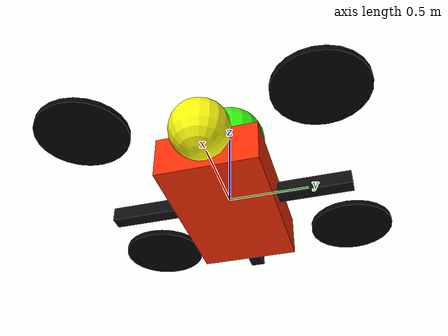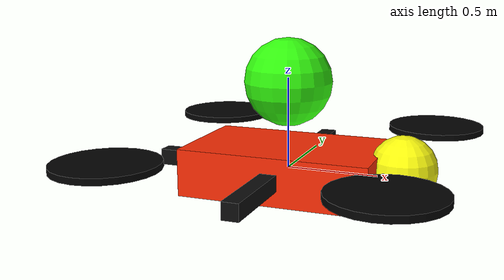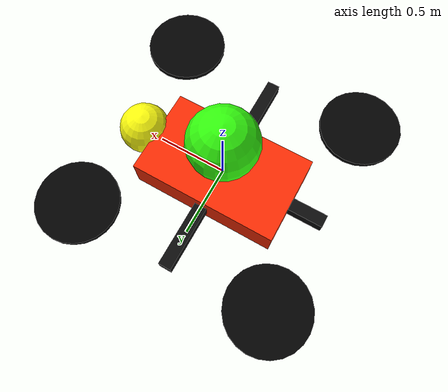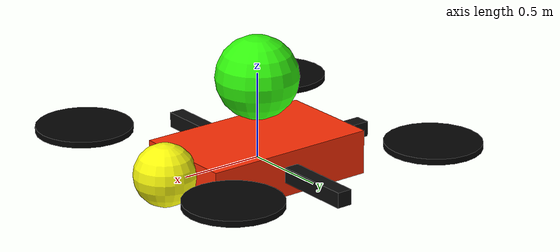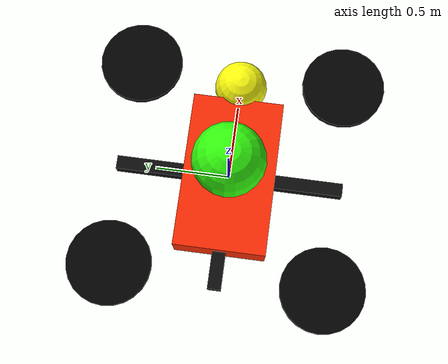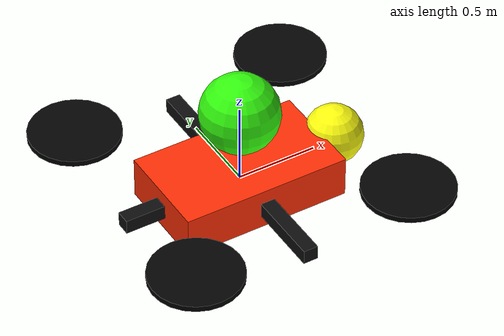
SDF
<?xml version="1.0" ?>
<sdf version="1.6">
  <model name="simple_uav">
    <static>false</static>
    <link name="base_link">
      <pose>0 0 0 0 0 0</pose>
      <gravity>false</gravity>
      <kinematic>true</kinematic>
      <inertial>
        <mass>0.2</mass>
        <inertia><ixx>0.004</ixx><iyy>0.004</iyy><izz>0.008</izz></inertia>
      </inertial>
      <collision name="body_collision">
        <geometry><box><size>0.32 0.22 0.10</size></box></geometry>
      </collision>
      <visual name="body_visual">
        <geometry><box><size>1.05 0.62 0.26</size></box></geometry>
        <material>
          <ambient>1.00 0.18 0.02 1</ambient>
          <diffuse>1.00 0.18 0.02 1</diffuse>
        </material>
      </visual>
      <visual name="front_sensor_visual">
        <pose>0.64 0 0.05 0 0 0</pose>
        <geometry><sphere><radius>0.18</radius></sphere></geometry>
        <material>
          <ambient>1.00 1.00 0.05 1</ambient>
          <diffuse>1.00 1.00 0.05 1</diffuse>
        </material>
      </visual>
      <visual name="high_visibility_beacon">
        <pose>0 0 0.48 0 0 0</pose>
        <geometry><sphere><radius>0.24</radius></sphere></geometry>
        <material>
          <ambient>0.20 1.00 0.05 1</ambient>
          <diffuse>0.20 1.00 0.05 1</diffuse>
          <emissive>0.20 1.00 0.05 1</emissive>
        </material>
      </visual>
      <visual name="arm_x_visual">
        <geometry><box><size>1.55 0.09 0.09</size></box></geometry>
        <material>
          <ambient>0.05 0.05 0.05 1</ambient>
          <diffuse>0.05 0.05 0.05 1</diffuse>
        </material>
      </visual>
      <visual name="arm_y_visual">
        <geometry><box><size>0.09 1.55 0.09</size></box></geometry>
        <material>
          <ambient>0.05 0.05 0.05 1</ambient>
          <diffuse>0.05 0.05 0.05 1</diffuse>
        </material>
      </visual>
      <visual name="rotor_front_right">
        <pose>0.70 0.70 0.13 0 0 0</pose>
        <geometry><cylinder><radius>0.28</radius><length>0.035</length></cylinder></geometry>
        <material><ambient>0.01 0.01 0.01 1</ambient><diffuse>0.01 0.01 0.01 1</diffuse></material>
      </visual>
      <visual name="rotor_front_left">
        <pose>0.70 -0.70 0.13 0 0 0</pose>
        <geometry><cylinder><radius>0.28</radius><length>0.035</length></cylinder></geometry>
        <material><ambient>0.01 0.01 0.01 1</ambient><diffuse>0.01 0.01 0.01 1</diffuse></material>
      </visual>
      <visual name="rotor_rear_right">
        <pose>-0.70 0.70 0.13 0 0 0</pose>
        <geometry><cylinder><radius>0.28</radius><length>0.035</length></cylinder></geometry>
        <material><ambient>0.01 0.01 0.01 1</ambient><diffuse>0.01 0.01 0.01 1</diffuse></material>
      </visual>
      <visual name="rotor_rear_left">
        <pose>-0.70 -0.70 0.13 0 0 0</pose>
        <geometry><cylinder><radius>0.28</radius><length>0.035</length></cylinder></geometry>
        <material><ambient>0.01 0.01 0.01 1</ambient><diffuse>0.01 0.01 0.01 1</diffuse></material>
      </visual>
    </link>
  </model>
</sdf>
